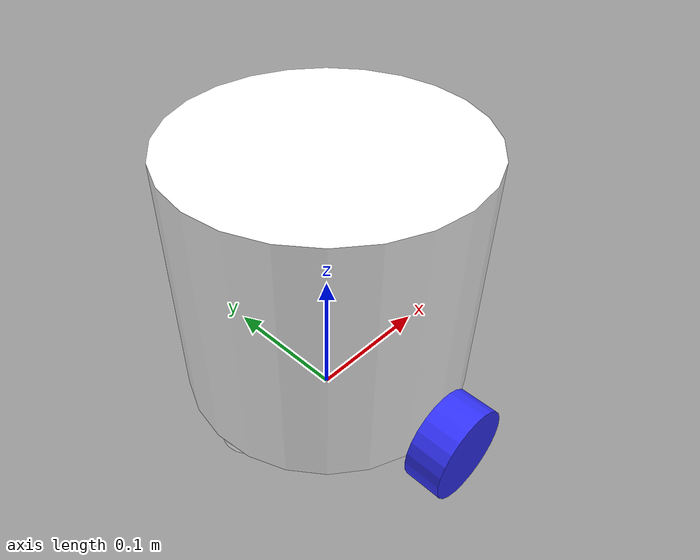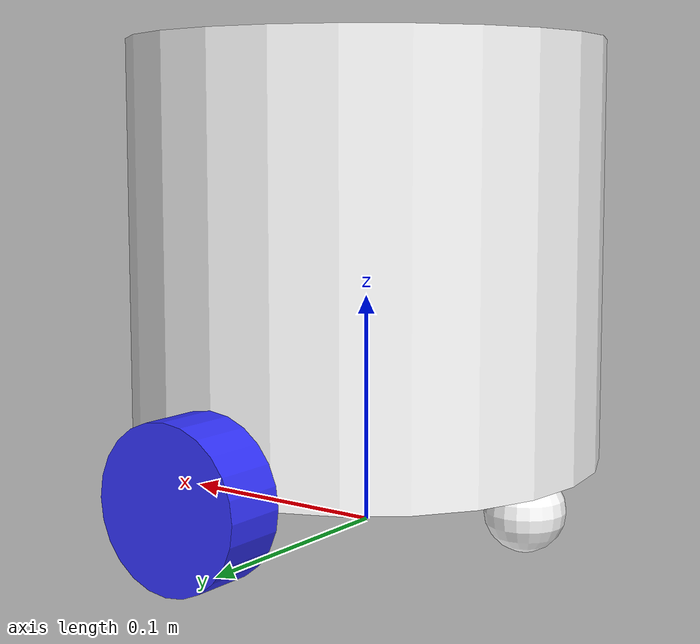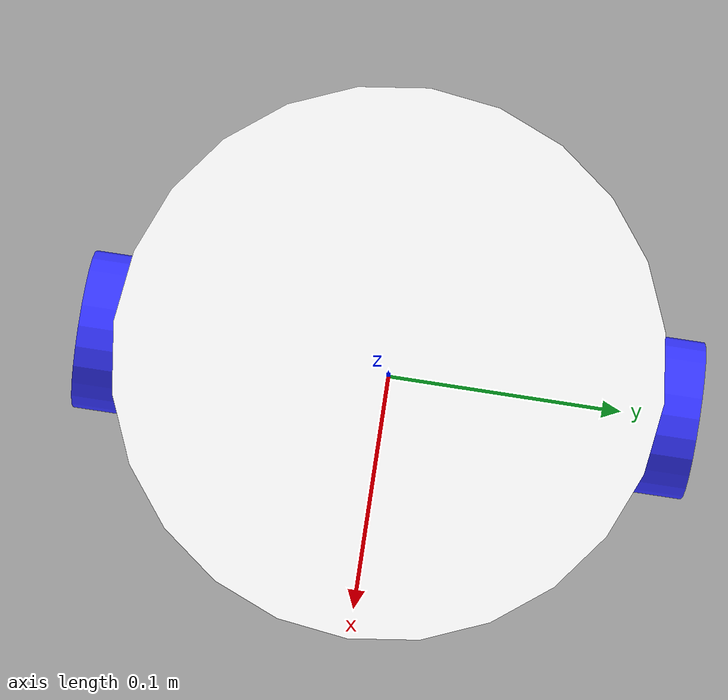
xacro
<?xml version="1.0"?>
<robot xmlns:xacro="http://www.ros.org/wiki/xacro">

    <xacro:include filename="inertial_macros.xacro"/>

    <xacro:property name="chassis_radius" value="0.102"/>
    <xacro:property name="chassis_height" value="0.18"/>
    <xacro:property name="chassis_mass" value="1.5"/>

    <xacro:property name="wheel_radius" value="0.033"/>
    <xacro:property name="wheel_thickness" value="0.026"/>
    <xacro:property name="wheel_mass" value="0.05"/>

    <xacro:property name="wheel_offset_x" value="0.15"/>
    <xacro:property name="wheel_offset_y" value="0.105"/>
    <xacro:property name="wheel_offset_z" value="0.0"/>

    <xacro:property name="caster_wheel_radius" value="0.017"/>
    <xacro:property name="caster_wheel_mass" value="0.01"/>
    <xacro:property name="caster_wheel_offset_x" value="0.08"/>

    <xacro:property name="caster_wheel_offset_z" value="${-chassis_height/2 - 0.03 + caster_wheel_radius}"/>

    <material name="white">
        <color rgba="1 1 1 1"/>
    </material>
    <material name="red">
        <color rgba="1 0 0 1"/>
    </material>
    <material name="blue">
        <color rgba="0.2 0.2 1 1"/>
    </material>

    <link name="base_link"/>
    <link name="base_footprint"/>

    <joint name="base_footprint_joint" type="fixed">
        <parent link="base_link"/>
        <child link="base_footprint"/>
        <origin xyz="0 0 0" rpy="0 0 0"/>
    </joint>

    <link name="chassis">
        <visual>
            <origin xyz="0 0 0"/>
            <geometry>
                <cylinder radius="${chassis_radius}" length="${chassis_height}"/>
            </geometry>
            <material name="white"/>
        </visual>
        <collision>
            <origin xyz="0 0 0"/>
            <geometry>
                <cylinder radius="${chassis_radius}" length="${chassis_height}"/>
            </geometry>
        </collision>
        <xacro:inertial_cylinder mass="0.5" length="${chassis_height}" radius="${chassis_radius}">
            <origin xyz="0 0 0" rpy="0 0 0"/>
        </xacro:inertial_cylinder>
    </link>

    <link name="right_wheel">
        <visual>
            <geometry>
                <cylinder radius="${wheel_radius}" length="${wheel_thickness}"/>
            </geometry>
            <material name="blue"/>
        </visual>
        <collision>
            <geometry>
                <sphere radius="${wheel_radius}"/>
            </geometry>
        </collision>
        <xacro:inertial_cylinder mass="${wheel_mass}" length="${wheel_thickness}" radius="${wheel_radius}">
            <origin xyz="0 0 0" rpy="0 0 0"/>
        </xacro:inertial_cylinder>
    </link>

    <link name="left_wheel">
        <visual>
            <geometry>
                <cylinder radius="${wheel_radius}" length="${wheel_thickness}"/>
            </geometry>
            <material name="blue"/>
        </visual>
        <collision>
            <geometry>
                <sphere radius="${wheel_radius}"/>
            </geometry>
        </collision>
        <xacro:inertial_cylinder mass="${wheel_mass}" length="${wheel_thickness}" radius="${wheel_radius}">
            <origin xyz="0 0 0" rpy="0 0 0"/>
        </xacro:inertial_cylinder>
    </link>

    <link name="caster_wheel">
        <visual>
            <geometry>
                <sphere radius="${caster_wheel_radius}"/>
            </geometry>
            <material name="white"/>
        </visual>
        <collision>
            <geometry>
                <sphere radius="${caster_wheel_radius}"/>
            </geometry>
        </collision>
        <xacro:inertial_sphere mass="${caster_wheel_mass}" radius="${caster_wheel_radius}">
            <origin xyz="0 0 0" rpy="0 0 0"/>
        </xacro:inertial_sphere>
    </link>

    <link name="back_caster_wheel">
        <visual>
            <geometry>
                <sphere radius="${caster_wheel_radius}"/>
            </geometry>
            <material name="white"/>
        </visual>
        <collision>
            <geometry>
                <sphere radius="${caster_wheel_radius}"/>
            </geometry>
        </collision>
        <xacro:inertial_sphere mass="${caster_wheel_mass}" radius="${caster_wheel_radius}">
            <origin xyz="0 0 0" rpy="0 0 0"/>
        </xacro:inertial_sphere>
    </link>

    <joint name="chassis_joint" type="fixed">
        <parent link="base_link"/>
        <child link="chassis"/>
        <origin xyz="0 0 ${(chassis_height/2)+0.03}"/>
    </joint>

    <joint name="right_wheel_joint" type="continuous">
        <parent link="base_link"/>
        <child link="right_wheel"/>
        <origin xyz="0 -0.115 ${wheel_radius}" rpy="${pi/2} 0 0" />
        <axis xyz="0 0 -1"/>
    </joint>

    <joint name="left_wheel_joint" type="continuous">
        <parent link="base_link"/>
        <child link="left_wheel"/>
        <origin xyz="0 0.115 ${wheel_radius}" rpy="-${pi/2} 0 0" />
        <axis xyz="0 0 1"/>
    </joint>

    <joint name="caster_wheel_joint" type="fixed">
        <parent link="chassis"/>
        <child link="caster_wheel"/>
        <origin xyz="${caster_wheel_offset_x} 0 ${caster_wheel_offset_z}"/>
    </joint>

    <joint name="back_caster_wheel_joint" type="fixed">
        <parent link="chassis"/>
        <child link="back_caster_wheel"/>
        <origin xyz="${-caster_wheel_offset_x} 0 ${caster_wheel_offset_z}"/>
    </joint>

    <gazebo reference="chassis">
        <material>Gazebo/White</material>
    </gazebo>

    <gazebo reference="right_wheel">
        <material>Gazebo/Red</material>
    </gazebo>

    <gazebo reference="left_wheel">
        <material>Gazebo/Red</material>
    </gazebo>

    <gazebo reference="caster_wheel">
        <material>Gazebo/White</material>
        <mu1 value="0.001"/>
        <mu2 value="0.001"/>
    </gazebo>

    <gazebo reference="back_caster_wheel">
        <material>Gazebo/White</material>
        <mu1 value="0.001"/>
        <mu2 value="0.001"/>
    </gazebo>

</robot>

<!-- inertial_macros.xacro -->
<robot xmlns:xacro="http://www.ros.org/wiki/xacro" >

    <!-- Specify some standard inertial calculations https://en.wikipedia.org/wiki/List_of_moments_of_inertia -->
    <!-- These make use of xacro's mathematical functionality -->

    <xacro:macro name="inertial_sphere" params="mass radius *origin">
        <inertial>
            <xacro:insert_block name="origin"/>
            <mass value="${mass}" />
            <inertia ixx="${(2/5) * mass * (radius*radius)}" ixy="0.0" ixz="0.0"
                    iyy="${(2/5) * mass * (radius*radius)}" iyz="0.0"
                    izz="${(2/5) * mass * (radius*radius)}" />
        </inertial>
    </xacro:macro>

    <xacro:macro name="inertial_box" params="mass x y z *origin">
        <inertial>
            <xacro:insert_block name="origin"/>
            <mass value="${mass}" />
            <inertia ixx="${(1/12) * mass * (y*y+z*z)}" ixy="0.0" ixz="0.0"
                    iyy="${(1/12) * mass * (x*x+z*z)}" iyz="0.0"
                    izz="${(1/12) * mass * (x*x+y*y)}" />
        </inertial>
    </xacro:macro>

    <xacro:macro name="inertial_cylinder" params="mass length radius *origin">
        <inertial>
            <xacro:insert_block name="origin"/>
            <mass value="${mass}" />
            <inertia ixx="${(1/12) * mass * (3*radius*radius + length*length)}" ixy="0.0" ixz="0.0"
                    iyy="${(1/12) * mass * (3*radius*radius + length*length)}" iyz="0.0"
                    izz="${(1/2) * mass * (radius*radius)}" />
        </inertial>
    </xacro:macro>

</robot>
